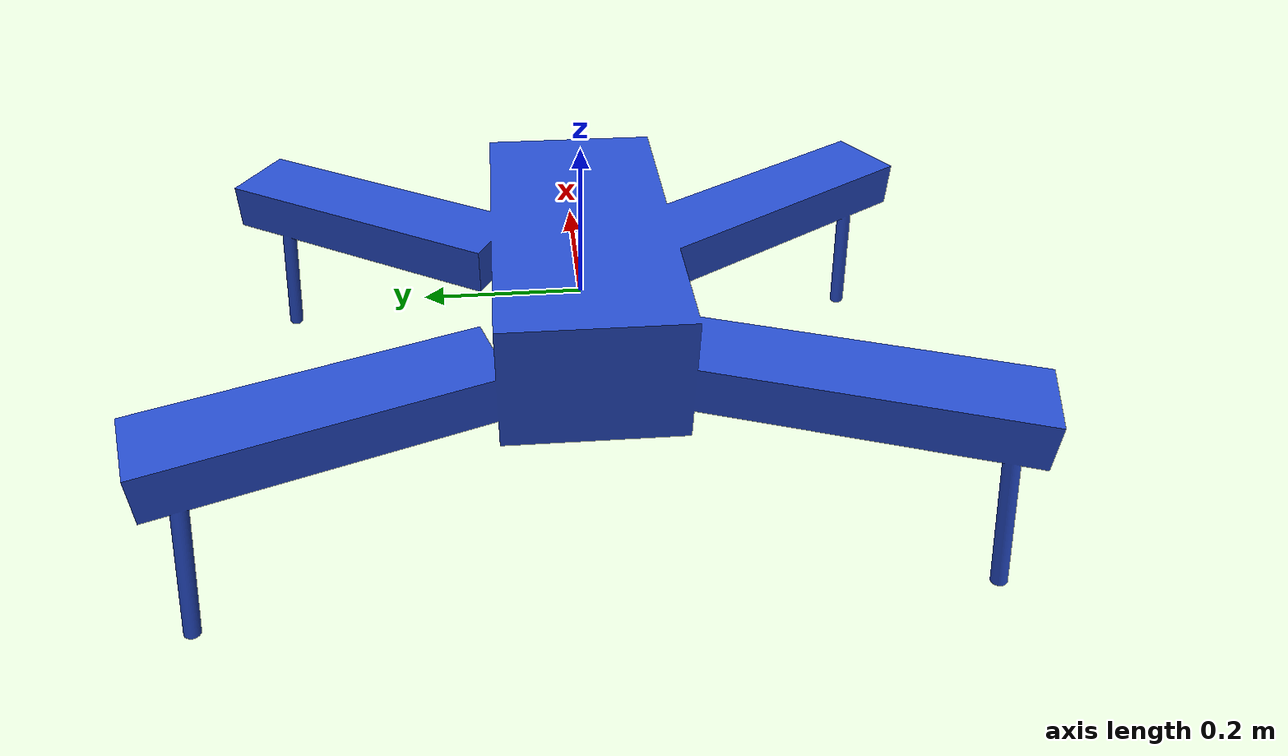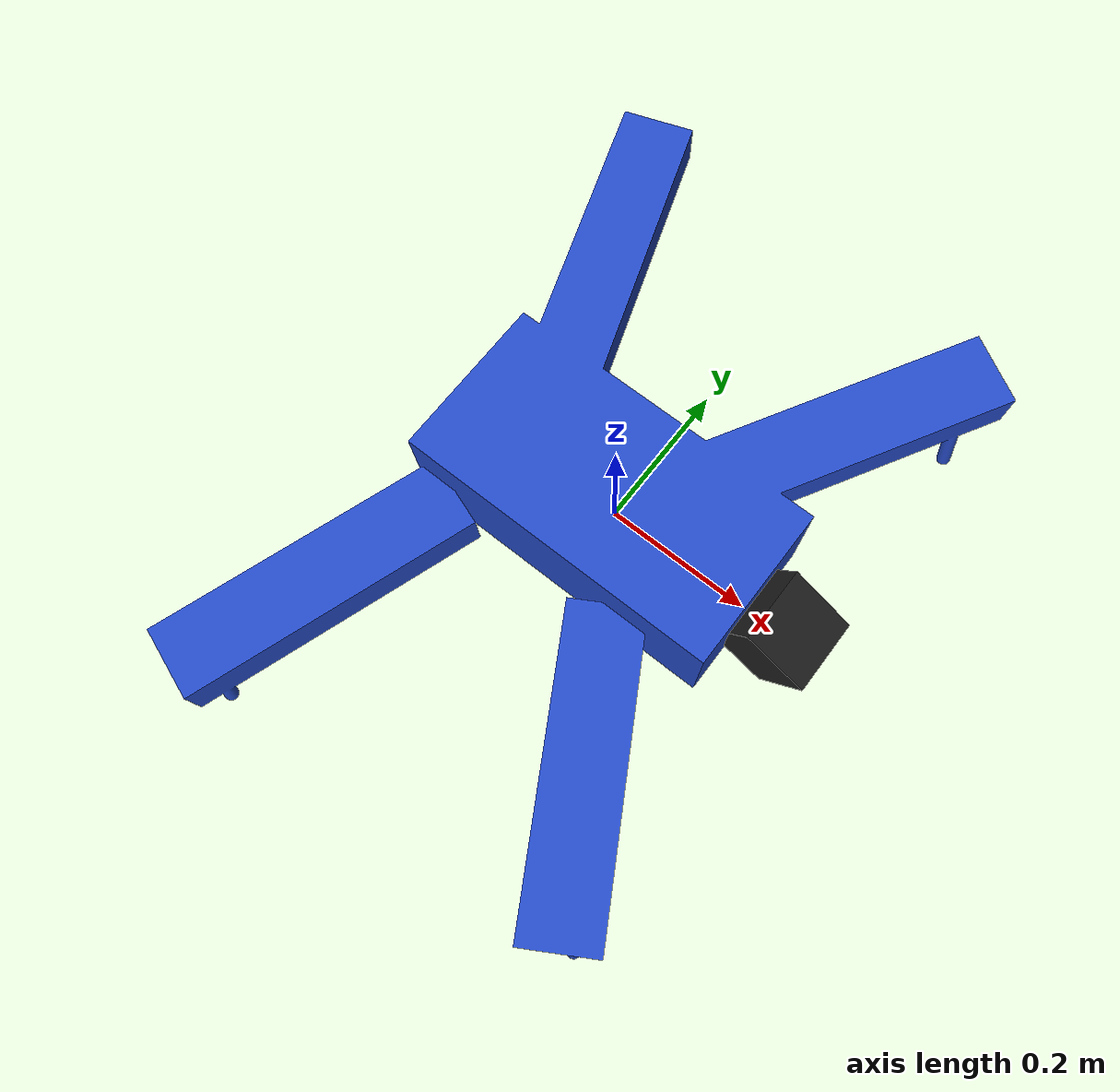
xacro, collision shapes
<?xml version="1.0"?>
<robot
  name="iris"
  xmlns:xacro="http://ros.org/wiki/xacro"
>

	<xacro:include filename="iris_base.urdf.xacro" />
	<xacro:iris_base name="iris_base">
		<origin xyz="0 0 0" rpy="0 0 0"/>
	</xacro:iris_base>

	<!-- laser Range Finder -->
	<xacro:include filename="generic_laser.urdf.xacro" />
	<xacro:generic_laser
		name="hokuyo"
		parent="base_link"
		size_x="0.1" size_y="0.1" size_z="0.1"
		ros_topic="hokuyo"
		visualize_laser="true"
		update_rate="30"
		samples="720"
		min_angle="-1.570796"
		max_angle="1.570796"
		range_min="0.1"
		range_max="30.0"
		range_res="0.01"
		noise_mean="0.0"
		noise_stddv="0.01">
		<origin xyz="0.25 0.0 0.02" rpy="${M_PI/2} ${-M_PI/3} 0"/>
	</xacro:generic_laser>

	<!-- Sonar Range Finder -->
	<xacro:include filename="sonar_sensor.urdf.xacro" />
	<xacro:sonar_sensor name="sonar" parent="base_link" ros_topic="sonar_distance" update_rate="40" min_range="0.01" max_range="25.0" field_of_view="0.01" ray_count="1">
		<origin xyz="-0.0 0.0 -0.07" rpy="0 ${M_PI/2} 0"/>
	</xacro:sonar_sensor>

</robot>

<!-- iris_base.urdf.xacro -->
<robot name="iris"  xmlns:xacro="http://ros.org/wiki/xacro">

	<xacro:macro name="iris_base" params="name">

		<link name="base_link">
			<collision name='body'>
				<geometry>
					<mesh filename="package://uri_gazebo/meshes/iris_collision.dae" scale="1 1 1" />
				</geometry>
			</collision>
			<visual name='body'>
				<geometry>
					<mesh filename="package://uri_gazebo/meshes/iris.dae" scale="1 1 1" />
				</geometry>
			</visual>
		</link>

		<gazebo reference="base_link">
			<material>URI/Blue</material>
		</gazebo>
	</xacro:macro>

</robot>

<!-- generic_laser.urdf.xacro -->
<robot xmlns:xacro="http://www.ros.org/wiki/xacro">

<xacro:property name="M_PI" value="3.1415926535897931" />

<xacro:macro name="generic_laser" params="name parent *origin
						 ros_topic
						 size_x size_y size_z
						 update_rate
						 samples
						 min_angle
						 max_angle
						 range_min
						 range_max
						 range_res
						 visualize_laser
						 noise_mean
						 noise_stddv">
	<joint name="${name}_joint" type="fixed">
		<xacro:insert_block name="origin" />
		<parent link="${parent}"/>
		<child link="${name}_link"/>
	</joint>

	<link name="${name}_link">
		<inertial>
			<mass value="0.001" />
			<origin xyz="0 0 0" rpy="0 0 0" />
			<inertia ixx="0.0001" ixy="0" ixz="0" iyy="0.0001" iyz="0" izz="0.0001" />
		</inertial>
		<visual>
			<origin xyz="0 0 0" rpy="0 0 0" />
			<geometry>
				<box size="${size_x} ${size_y} ${size_z}" />
			</geometry>
		</visual>
		<collision>
			<origin xyz="0 0 0" rpy="0 0 0" />
			<geometry>
				<box size="${size_x} ${size_y} ${size_z}" />
			</geometry>
		</collision>
	</link>

	<gazebo reference="${name}_link">
		<material>URI/Black</material>
    <sensor type="gpu_ray" name="head_hokuyo_sensor">
      <pose>0 0 0 0 0 0</pose>
      <visualize>${visualize_laser}</visualize>
      <update_rate>${update_rate}</update_rate>
      <ray>
        <scan>
          <horizontal>
            <samples>${samples}</samples>
            <resolution>1</resolution>
            <min_angle>${min_angle}</min_angle>
            <max_angle>${max_angle}</max_angle>
          </horizontal>
        </scan>
        <range>
          <min>${range_min}</min>
          <max>${range_max}</max>
          <resolution>${range_res}</resolution>
        </range>
        <noise>
          <type>gaussian</type>
          <mean>${noise_mean}</mean>
          <stddev>${noise_stddv}</stddev>
        </noise>
      </ray>
      <plugin name="gazebo_ros_head_hokuyo_controller" filename="libgazebo_ros_gpu_laser.so">
        <topicName>${ros_topic}</topicName>
        <frameName>${name}_link</frameName>
      </plugin>
    </sensor>
	</gazebo>
</xacro:macro>

</robot>

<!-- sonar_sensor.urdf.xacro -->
<robot xmlns:xacro="http://www.ros.org/wiki/xacro">
<xacro:macro name="sonar_sensor" params="name parent *origin ros_topic update_rate min_range max_range field_of_view ray_count">
	<joint name="${name}_joint" type="fixed">
		<xacro:insert_block name="origin" />
		<parent link="${parent}"/>
		<child link="${name}_link"/>
	</joint>

	<link name="${name}_link">
		<inertial>
			<mass value="0.001" />
			<origin xyz="0 0 0" rpy="0 0 0" />
			<inertia ixx="0.000000017" ixy="0" ixz="0" iyy="0.000000017" iyz="0" izz="0.000000017" />
		</inertial>
		<visual>
			<origin xyz="0 0 0" rpy="0 0 0" />
			<geometry>
				<mesh filename="package://hector_sensors_description/meshes/sonar_sensor/max_sonar_ez4.dae"/>
			</geometry>
		</visual>
		<collision>
			<origin xyz="0 0 0" rpy="0 0 0" />
			<geometry>
				<box size="0.01 0.01 0.01" />
			</geometry>
		</collision>
	</link>

	<gazebo reference="${name}_link">
		<sensor type="ray" name="${name}">
			<always_on>true</always_on>
			<update_rate>${update_rate}</update_rate>
			<pose>0 0 0 0 0 0</pose>
			<visualize>false</visualize>
			<ray>
				<scan>
					<horizontal>
						<samples>${ray_count}</samples>
						<resolution>1</resolution>
						<min_angle>-${field_of_view/2}</min_angle>
						<max_angle> ${field_of_view/2}</max_angle>
					</horizontal>
					<vertical>
						<samples>${ray_count}</samples>
						<resolution>1</resolution>
						<min_angle>-${field_of_view/2}</min_angle>
						<max_angle> ${field_of_view/2}</max_angle>
					</vertical>
				</scan>
				<range>
					<min>${min_range}</min>
					<max>${max_range}</max>
					<resolution>0.01</resolution>
				</range>
			</ray>

			<plugin name="gazebo_ros_${name}_controller" filename="libhector_gazebo_ros_sonar.so">
				<gaussianNoise>0.005</gaussianNoise>
				<topicName>${ros_topic}</topicName>
				<frameId>${name}_link</frameId>
			</plugin>
		</sensor>
	</gazebo>
</xacro:macro>
</robot>
